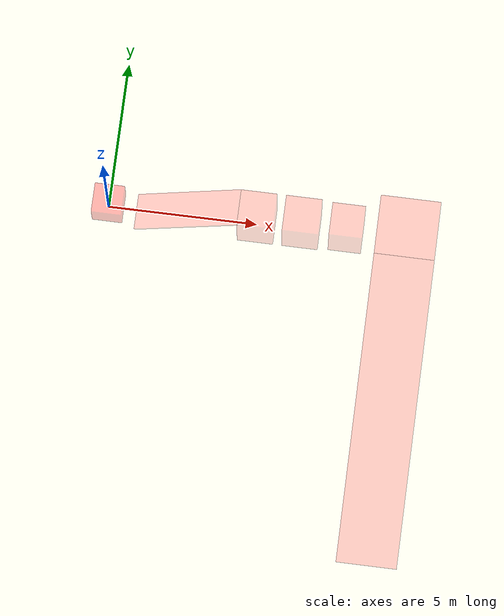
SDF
<sdf version="1.4">
<model name="dd_robot">
    <static>true</static>

    <link name="link">
        <pose> 0 0 0.5 0 0 0</pose>
        <gravity>0</gravity>

        <visual name="link_vis">

            <geometry>
                <box>
                    <size> 1 1 1 </size>
                </box>
            </geometry>
            <material>
                <ambient>1 0 0 1</ambient>
                <diffuse>1 0 0 1</diffuse>
                <specular>0.1 0.1 0.1 1</specular>
                <emissive>0 0 0 0</emissive>
            </material>
            <transparency>0.7</transparency>
        </visual>
    </link>

    <link name="ramp_top">
        <gravity>0</gravity>
        <pose> 10 0 1 0 0 0</pose>

                <collision name="link_col">
            <geometry>
                <box>
                    <size> 2 2 2 </size>
                </box>
            </geometry>
        </collision>

        <visual name="link_vis">

            <geometry>
                <box>
                    <size> 2 2 2 </size>
                </box>
            </geometry>
            <material>
                <ambient>1 0 0 1</ambient>
                <diffuse>1 0 0 1</diffuse>
                <specular>0.1 0.1 0.1 1</specular>
                <emissive>0 0 0 0</emissive>
            </material>
            <transparency>0.9</transparency>
        </visual>
    </link>

    <link name="ramp_ramp">
        <gravity>0</gravity>
        <pose> 10 -6 1 0.2027100355 0 0</pose>

                <collision name="link_col">
            <geometry>
                <box>
                    <size> 2 10.1980390272 0.1 </size>
                </box>
            </geometry>
        </collision>

        <visual name="link_vis">
            <geometry>
                <box>
                    <size> 2 10.1980390272 0.1 </size>
                </box>
            </geometry>
            <material>
                <ambient>1 0 0 1</ambient>
                <diffuse>1 0 0 1</diffuse>
                <specular>0.1 0.1 0.1 1</specular>
                <emissive>0 0 0 0</emissive>
            </material>
            <transparency>0.9</transparency>
        </visual>
    </link>

 <link name="ramp_top2">
        <gravity>0</gravity>
        <pose> 8 0 1 0 0 0</pose>

                <collision name="link_col">
            <geometry>
                <box>
                   <size> 1.1 1.1 2 </size>
                </box>
            </geometry>
        </collision>

        <visual name="link_vis">

            <geometry>
                <box>
                    <size> 1.1 1.1 2 </size>
                </box>
            </geometry>
            <material>
                <ambient>1 0 0 1</ambient>
                <diffuse>1 0 0 1</diffuse>
                <specular>0.1 0.1 0.1 1</specular>
                <emissive>0 0 0 0</emissive>
            </material>
            <transparency>0.9</transparency>
        </visual>
    </link>

    <link name="ramp_top3">
        <gravity>0</gravity>
        <pose> 6.5 0 1 0 0 0</pose>

                <collision name="link_col">
            <geometry>
                <box>
                    <size> 1.2 1.2 2 </size>
                </box>
            </geometry>
        </collision>

        <visual name="link_vis">

            <geometry>
                <box>
                    <size> 1.2 1.2 2 </size>
                </box>
            </geometry>
            <material>
                <ambient>1 0 0 1</ambient>
                <diffuse>1 0 0 1</diffuse>
                <specular>0.1 0.1 0.1 1</specular>
                <emissive>0 0 0 0</emissive>
            </material>
            <transparency>0.9</transparency>
        </visual>
    </link>

<link name="ramp_top4">
        <gravity>0</gravity>
        <pose> 5 0 1 0 0 0</pose>

                <collision name="link_col">
            <geometry>
                <box>
                    <size> 1.2 1.2 2 </size>
                </box>
            </geometry>
        </collision>

        <visual name="link_vis">

            <geometry>
                <box>
                    <size> 1.2 1.2 2 </size>
                </box>
            </geometry>
            <material>
                <ambient>1 0 0 1</ambient>
                <diffuse>1 0 0 1</diffuse>
                <specular>0.1 0.1 0.1 1</specular>
                <emissive>0 0 0 0</emissive>
            </material>
            <transparency>0.9</transparency>
        </visual>
    </link>

<link name="ramp_top5">
        <gravity>0</gravity>
        <pose> 2.68 0 0.875 0 -0.55684288947 0</pose>

                <collision name="link_col">
            <geometry>
                <box>
                    <size> 4.10555127546 1.2 0.1 </size>
                </box>
            </geometry>
        </collision>

        <visual name="link_vis">

            <geometry>
                <box>
                    <size> 4.10555127546 1.2 0.1 </size>
                </box>
            </geometry>
            <material>
                <ambient>1 0 0 1</ambient>
                <diffuse>1 0 0 1</diffuse>
                <specular>0.1 0.1 0.1 1</specular>
                <emissive>0 0 0 0</emissive>
            </material>
            <transparency>0.9</transparency>
        </visual>
    </link>

</model>
</sdf>
